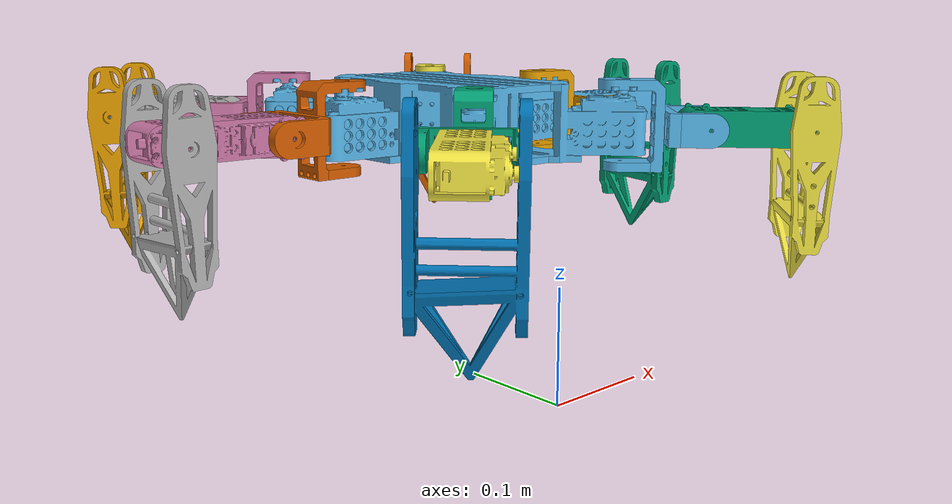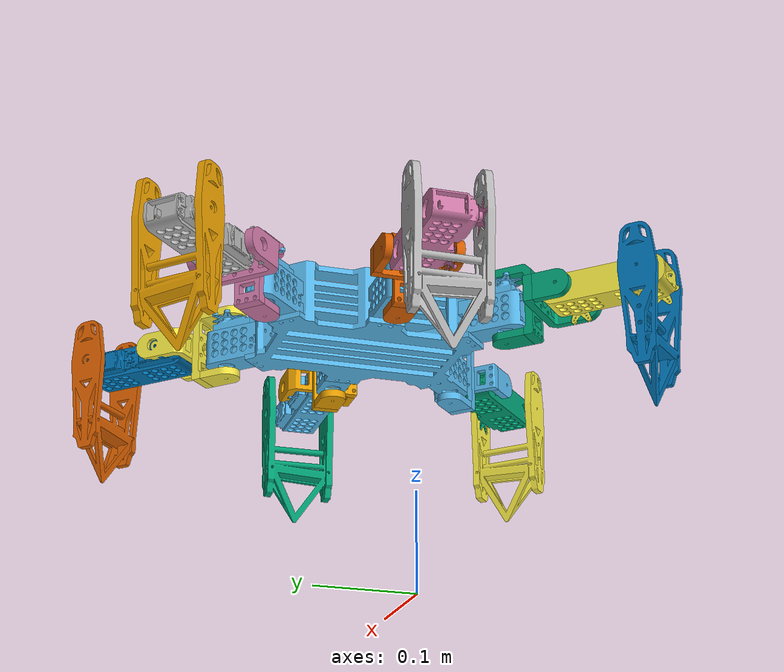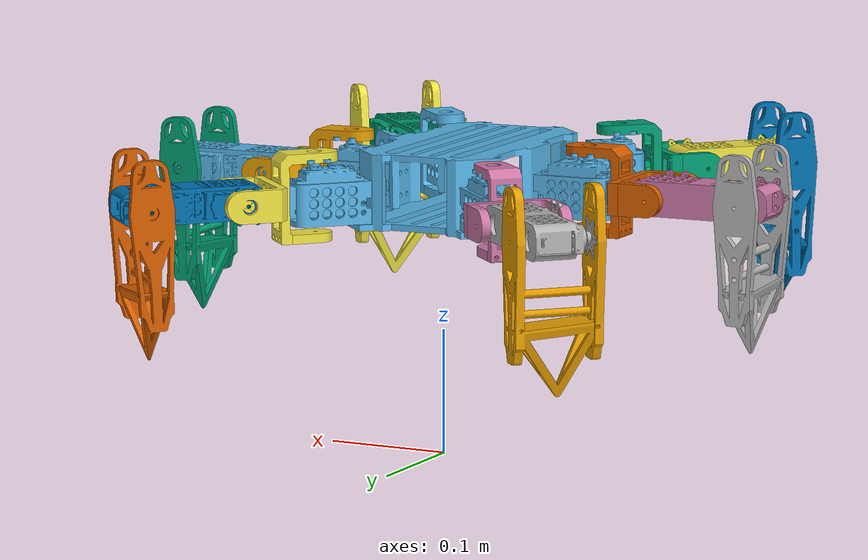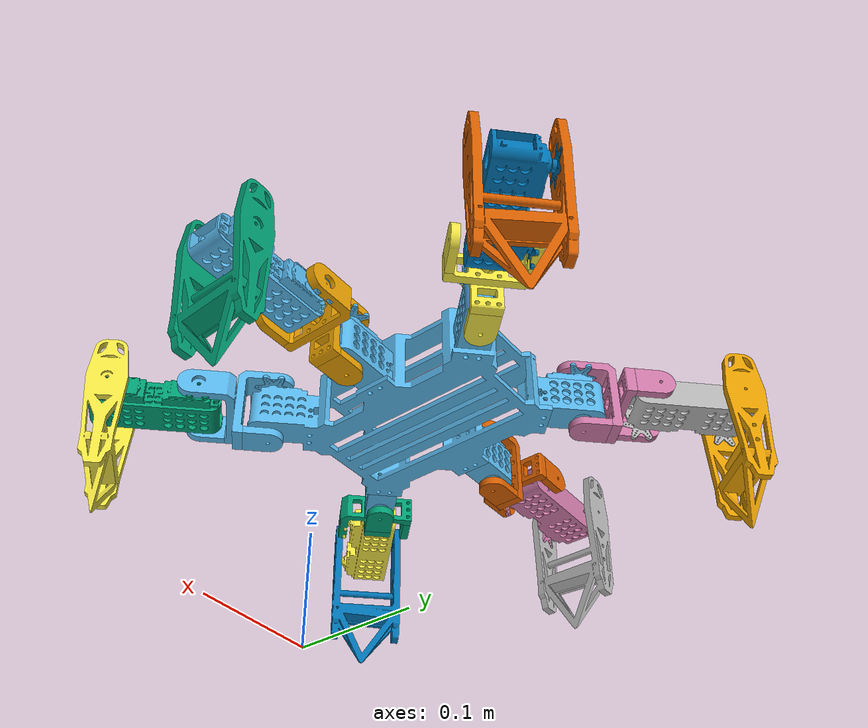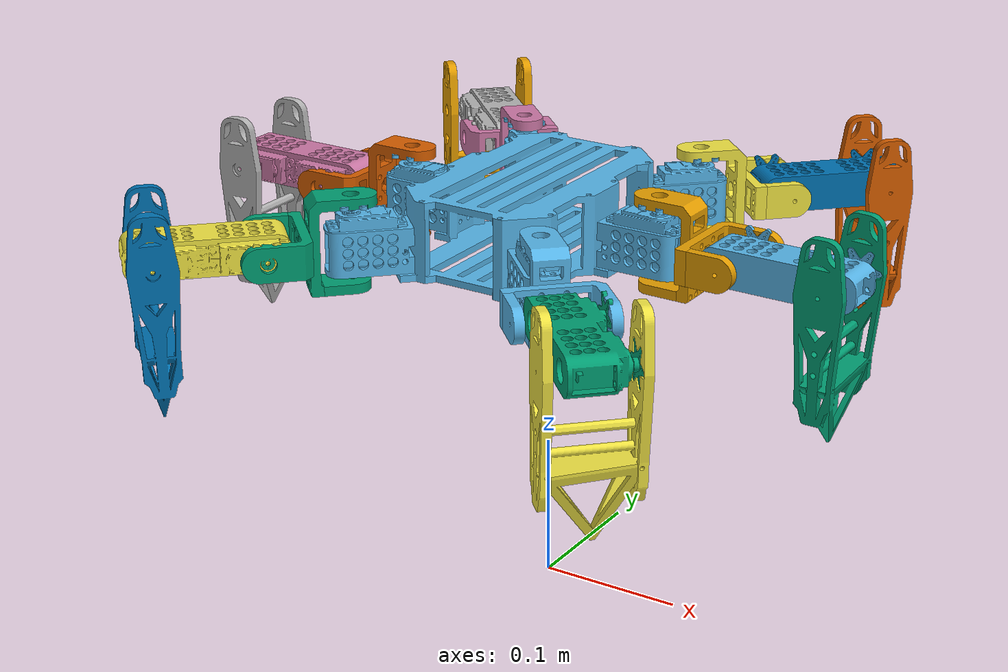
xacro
<?xml version="1.0"?>
<robot name="Hexapod">
  <mujoco>
    <compiler meshdir="C:/Users/ASUS/Desktop/Hexapod/Models/URDF/hexapod_description/meshes" discardvisual="false" fusestatic="false"/>
  </mujoco>
  <link name="world"/>
  <joint name="world_to_base" type="fixed">
    <origin xyz="0 0 0.2" rpy="1.5708 0 0"/>
    <parent link="world"/>
    <child link="base_link"/>
  </joint>
  <link name="base_link">
    <visual>
      <origin xyz="0 0 0" rpy="0 0 0"/>
      <geometry>
        <mesh filename="base_link.stl" scale="0.001 0.001 0.001"/>
      </geometry>
    </visual>
    <visual>
      <origin xyz="0 0 0" rpy="0 0 0"/>
      <geometry>
        <mesh filename="CoxaServo__1__1.stl" scale="0.001 0.001 0.001"/>
      </geometry>
    </visual>
    <visual>
      <origin xyz="0 0 0" rpy="0 0 0"/>
      <geometry>
        <mesh filename="MG996R_Motor__6__1.stl" scale="0.001 0.001 0.001"/>
      </geometry>
    </visual>
    <visual>
      <origin xyz="0 0 0" rpy="0 0 0"/>
      <geometry>
        <mesh filename="CoxaServo__2__1.stl" scale="0.001 0.001 0.001"/>
      </geometry>
    </visual>
    <visual>
      <origin xyz="0 0 0" rpy="0 0 0"/>
      <geometry>
        <mesh filename="MG996R_Motor__7__1.stl" scale="0.001 0.001 0.001"/>
      </geometry>
    </visual>
    <visual>
      <origin xyz="0 0 0" rpy="0 0 0"/>
      <geometry>
        <mesh filename="CoxaServo__3__1.stl" scale="0.001 0.001 0.001"/>
      </geometry>
    </visual>
    <visual>
      <origin xyz="0 0 0" rpy="0 0 0"/>
      <geometry>
        <mesh filename="MG996R_Motor__8__1.stl" scale="0.001 0.001 0.001"/>
      </geometry>
    </visual>
    <visual>
      <origin xyz="0 0 0" rpy="0 0 0"/>
      <geometry>
        <mesh filename="CoxaServo__4__1.stl" scale="0.001 0.001 0.001"/>
      </geometry>
    </visual>
    <visual>
      <origin xyz="0 0 0" rpy="0 0 0"/>
      <geometry>
        <mesh filename="MG996R_Motor__10__1.stl" scale="0.001 0.001 0.001"/>
      </geometry>
    </visual>
    <visual>
      <origin xyz="0 0 0" rpy="0 0 0"/>
      <geometry>
        <mesh filename="CoxaServo__5__1.stl" scale="0.001 0.001 0.001"/>
      </geometry>
    </visual>
    <visual>
      <origin xyz="0 0 0" rpy="0 0 0"/>
      <geometry>
        <mesh filename="MG996R_Motor__9__1.stl" scale="0.001 0.001 0.001"/>
      </geometry>
    </visual>
  </link>
  <link name="Holder__1__1">
    <inertial>
      <origin xyz="-0.0255568 -0.0538439 0.0245731" rpy="-0.594942437 0.200975604 2.17696386"/>
      <mass value="0.309336"/>
      <inertia ixx="0.000259617" iyy="0.000257994" izz="0.000239666" ixy="0" ixz="0" iyz="0"/>
    </inertial>
    <visual>
      <origin xyz="0.129816 -0.088859 -0.039381" rpy="0 0 0"/>
      <geometry>
        <mesh filename="Holder__1__1.stl" scale="0.001 0.001 0.001"/>
      </geometry>
    </visual>
    <visual>
      <origin xyz="0.129816 -0.088859 -0.039381" rpy="0 0 0"/>
      <geometry>
        <mesh filename="Bearing_Holder__6__1.stl" scale="0.001 0.001 0.001"/>
      </geometry>
    </visual>
    <visual>
      <origin xyz="0.129816 -0.088859 -0.039381" rpy="0 0 0"/>
      <geometry>
        <mesh filename="Holder__22__1.stl" scale="0.001 0.001 0.001"/>
      </geometry>
    </visual>
    <visual>
      <origin xyz="0.129816 -0.088859 -0.039381" rpy="0 0 0"/>
      <geometry>
        <mesh filename="Bearing_Holder__23__1.stl" scale="0.001 0.001 0.001"/>
      </geometry>
    </visual>
  </link>
  <joint name="Revolute_20" type="revolute">
    <origin xyz="-0.129816 0.088859 0.039381" rpy="0 0 0"/>
    <parent link="base_link"/>
    <child link="Holder__1__1"/>
    <axis xyz="-0.008081 -0.999967 0"/>
    <limit lower="-1.57" upper="1.57" effort="1" velocity="5"/>
    <dynamics damping="0.05" friction="0.01"/>
  </joint>
  <link name="femur_joint__3__1">
    <inertial>
      <origin xyz="-0.0471071 0.000278413 0.00716005" rpy="-0.777201564 -0.005739382 1.5633659"/>
      <mass value="0.690314"/>
      <inertia ixx="0.000774007" iyy="0.00069753" izz="0.000147462" ixy="0" ixz="0" iyz="0"/>
    </inertial>
    <visual>
      <origin xyz="0.155836 -0.035016 -0.106717" rpy="0 0 0"/>
      <geometry>
        <mesh filename="femur_joint__3__1.stl" scale="0.001 0.001 0.001"/>
      </geometry>
    </visual>
  </link>
  <joint name="Revolute_61" type="revolute">
    <origin xyz="-0.02602 -0.053843 0.067336" rpy="0 0 0"/>
    <parent link="Holder__1__1"/>
    <child link="femur_joint__3__1"/>
    <axis xyz="-0.712775 0.00576 -0.701369"/>
    <limit lower="-1.57" upper="1.57" effort="1" velocity="5"/>
    <dynamics damping="0.05" friction="0.01"/>
  </joint>
  <link name="Leg__5__1">
    <inertial>
      <origin xyz="-0.021054 -0.0347628 -0.0223136" rpy="1.54013017 0.782995094 0.017343772"/>
      <mass value="0.422492"/>
      <inertia ixx="0.000917588" iyy="0.000636045" izz="0.000339367" ixy="0" ixz="0" iyz="0"/>
    </inertial>
    <visual>
      <origin xyz="0.209341 -0.035244 -0.161094" rpy="0 0 0"/>
      <geometry>
        <mesh filename="Leg__5__1.stl" scale="0.001 0.001 0.001"/>
      </geometry>
    </visual>
  </link>
  <joint name="Revolute_67" type="revolute">
    <origin xyz="-0.053505 0.000228 0.054377" rpy="0 0 0"/>
    <parent link="femur_joint__3__1"/>
    <child link="Leg__5__1"/>
    <axis xyz="-0.712775 0.00576 -0.701369"/>
    <limit lower="-1.57" upper="1.57" effort="1" velocity="5"/>
    <dynamics damping="0.05" friction="0.01"/>
  </joint>
  <link name="Holder__4__1">
    <inertial>
      <origin xyz="-0.031416 -0.0547386 -0.0002971" rpy="1.79295798 0.723701275 1.93562552"/>
      <mass value="0.309336"/>
      <inertia ixx="0.000259626" iyy="0.00025868" izz="0.000240989" ixy="0" ixz="0" iyz="0"/>
    </inertial>
    <visual>
      <origin xyz="0.159698 -0.090042 0.069458" rpy="0 0 0"/>
      <geometry>
        <mesh filename="Holder__4__1.stl" scale="0.001 0.001 0.001"/>
      </geometry>
    </visual>
    <visual>
      <origin xyz="0.159698 -0.090042 0.069458" rpy="0 0 0"/>
      <geometry>
        <mesh filename="Bearing_Holder__7__1.stl" scale="0.001 0.001 0.001"/>
      </geometry>
    </visual>
    <visual>
      <origin xyz="0.159698 -0.090042 0.069458" rpy="0 0 0"/>
      <geometry>
        <mesh filename="Holder__20__1.stl" scale="0.001 0.001 0.001"/>
      </geometry>
    </visual>
    <visual>
      <origin xyz="0.159698 -0.090042 0.069458" rpy="0 0 0"/>
      <geometry>
        <mesh filename="Bearing_Holder__21__1.stl" scale="0.001 0.001 0.001"/>
      </geometry>
    </visual>
  </link>
  <joint name="Revolute_23" type="revolute">
    <origin xyz="-0.159698 0.090042 -0.069458" rpy="0 0 0"/>
    <parent link="base_link"/>
    <child link="Holder__4__1"/>
    <axis xyz="-0.008081 -0.999967 0"/>
    <limit lower="-1.57" upper="1.57" effort="1" velocity="5"/>
    <dynamics damping="0.05" friction="0.01"/>
  </joint>
  <link name="femur_joint__5__1">
    <inertial>
      <origin xyz="-0.037489 0.001147 0.0100964" rpy="1.57079633 0 1.56601032"/>
      <mass value="0.690314"/>
      <inertia ixx="0.000774014" iyy="0.000697" izz="0.000146986" ixy="0" ixz="0" iyz="0"/>
    </inertial>
    <visual>
      <origin xyz="0.222574 -0.034609 0.079756" rpy="0 0 0"/>
      <geometry>
        <mesh filename="femur_joint__5__1.stl" scale="0.001 0.001 0.001"/>
      </geometry>
    </visual>
  </link>
  <joint name="Revolute_60" type="revolute">
    <origin xyz="-0.062876 -0.055433 -0.010298" rpy="0 0 0"/>
    <parent link="Holder__4__1"/>
    <child link="femur_joint__5__1"/>
    <axis xyz="0 0 -1"/>
    <limit lower="-1.57" upper="1.57" effort="1" velocity="5"/>
    <dynamics damping="0.05" friction="0.01"/>
  </joint>
  <link name="Leg__4__1">
    <inertial>
      <origin xyz="0.00105444 -0.0349413 -0.0304566" rpy="1.52023544 -0.011161199 0.010668766"/>
      <mass value="0.422492"/>
      <inertia ixx="0.000918097" iyy="0.000635722" izz="0.00033918" ixy="0" ixz="0" iyz="0"/>
    </inertial>
    <visual>
      <origin xyz="0.298206 -0.035962 0.041103" rpy="0 0 0"/>
      <geometry>
        <mesh filename="Leg__4__1.stl" scale="0.001 0.001 0.001"/>
      </geometry>
    </visual>
  </link>
  <joint name="Revolute_66" type="revolute">
    <origin xyz="-0.075632 0.001353 0.038653" rpy="0 0 0"/>
    <parent link="femur_joint__5__1"/>
    <child link="Leg__4__1"/>
    <axis xyz="0 0 -1"/>
    <limit lower="-1.57" upper="1.57" effort="1" velocity="5"/>
    <dynamics damping="0.05" friction="0.01"/>
  </joint>
  <link name="Holder__3__1">
    <inertial>
      <origin xyz="0.0293569 -0.0528097 0.0007788" rpy="1.94309342 -0.968836876 1.07173222"/>
      <mass value="0.309336"/>
      <inertia ixx="0.000259565" iyy="0.000258084" izz="0.000240646" ixy="0" ixz="0" iyz="0"/>
    </inertial>
    <visual>
      <origin xyz="-0.046379 -0.085967 0.070527" rpy="0 0 0"/>
      <geometry>
        <mesh filename="Holder__3__1.stl" scale="0.001 0.001 0.001"/>
      </geometry>
    </visual>
    <visual>
      <origin xyz="-0.046379 -0.085967 0.070527" rpy="0 0 0"/>
      <geometry>
        <mesh filename="Bearing_Holder__5__1.stl" scale="0.001 0.001 0.001"/>
      </geometry>
    </visual>
    <visual>
      <origin xyz="-0.046379 -0.085967 0.070527" rpy="0 0 0"/>
      <geometry>
        <mesh filename="Holder__14__1.stl" scale="0.001 0.001 0.001"/>
      </geometry>
    </visual>
    <visual>
      <origin xyz="-0.046379 -0.085967 0.070527" rpy="0 0 0"/>
      <geometry>
        <mesh filename="Bearing_Holder__15__1.stl" scale="0.001 0.001 0.001"/>
      </geometry>
    </visual>
  </link>
  <joint name="Revolute_22" type="revolute">
    <origin xyz="0.046379 0.085967 -0.070527" rpy="0 0 0"/>
    <parent link="base_link"/>
    <child link="Holder__3__1"/>
    <axis xyz="-0.008081 -0.999967 0"/>
    <limit lower="-1.57" upper="1.57" effort="1" velocity="5"/>
    <dynamics damping="0.05" friction="0.01"/>
  </joint>
  <link name="femur_joint__2__1">
    <inertial>
      <origin xyz="0.0379102 -0.000408925 0.028864" rpy="1.56351292 0.000662472 1.55801474"/>
      <mass value="0.690314"/>
      <inertia ixx="0.000774102" iyy="0.000697029" izz="0.000147869" ixy="0" ixz="0" iyz="0"/>
    </inertial>
    <visual>
      <origin xyz="-0.106779 -0.032894 0.099161" rpy="0 0 0"/>
      <geometry>
        <mesh filename="femur_joint__2__1.stl" scale="0.001 0.001 0.001"/>
      </geometry>
    </visual>
  </link>
  <joint name="Revolute_57" type="revolute">
    <origin xyz="0.0604 -0.053073 -0.028634" rpy="0 0 0"/>
    <parent link="Holder__3__1"/>
    <child link="femur_joint__2__1"/>
    <axis xyz="-0.008081 6.5e-05 0.999967"/>
    <limit lower="-1.57" upper="1.57" effort="1" velocity="5"/>
    <dynamics damping="0.05" friction="0.01"/>
  </joint>
  <link name="Leg__1__1">
    <inertial>
      <origin xyz="-0.00186468 -0.034918 0.0304454" rpy="1.62096987 -0.019096146 -0.026464478"/>
      <mass value="0.422492"/>
      <inertia ixx="0.000917493" iyy="0.000635643" izz="0.000338864" ixy="0" ixz="0" iyz="0"/>
    </inertial>
    <visual>
      <origin xyz="-0.18306 -0.032073 0.098545" rpy="0 0 0"/>
      <geometry>
        <mesh filename="Leg__1__1.stl" scale="0.001 0.001 0.001"/>
      </geometry>
    </visual>
  </link>
  <joint name="Revolute_63" type="revolute">
    <origin xyz="0.076281 -0.000821 0.000616" rpy="0 0 0"/>
    <parent link="femur_joint__2__1"/>
    <child link="Leg__1__1"/>
    <axis xyz="-0.008081 6.5e-05 0.999967"/>
    <limit lower="-1.57" upper="1.57" effort="1" velocity="5"/>
    <dynamics damping="0.05" friction="0.01"/>
  </joint>
  <link name="Holder__9__1">
    <inertial>
      <origin xyz="0.0220447 -0.0516251 -0.023912" rpy="-0.379297663 -0.488814098 0.36895167"/>
      <mass value="0.309336"/>
      <inertia ixx="0.000259234" iyy="0.000258362" izz="0.000239681" ixy="0" ixz="0" iyz="0"/>
    </inertial>
    <visual>
      <origin xyz="-0.01799 -0.085061 0.179689" rpy="0 0 0"/>
      <geometry>
        <mesh filename="Holder__9__1.stl" scale="0.001 0.001 0.001"/>
      </geometry>
    </visual>
    <visual>
      <origin xyz="-0.01799 -0.085061 0.179689" rpy="0 0 0"/>
      <geometry>
        <mesh filename="Bearing_Holder__10__1.stl" scale="0.001 0.001 0.001"/>
      </geometry>
    </visual>
    <visual>
      <origin xyz="-0.01799 -0.085061 0.179689" rpy="0 0 0"/>
      <geometry>
        <mesh filename="Holder__16__1.stl" scale="0.001 0.001 0.001"/>
      </geometry>
    </visual>
    <visual>
      <origin xyz="-0.01799 -0.085061 0.179689" rpy="0 0 0"/>
      <geometry>
        <mesh filename="Bearing_Holder__17__1.stl" scale="0.001 0.001 0.001"/>
      </geometry>
    </visual>
  </link>
  <joint name="Revolute_27" type="revolute">
    <origin xyz="0.01799 0.085061 -0.179689" rpy="0 0 0"/>
    <parent link="base_link"/>
    <child link="Holder__9__1"/>
    <axis xyz="-0.008081 -0.999967 0"/>
    <limit lower="-1.57" upper="1.57" effort="1" velocity="5"/>
    <dynamics damping="0.05" friction="0.01"/>
  </joint>
  <link name="femur_joint__1__1">
    <inertial>
      <origin xyz="0.0471063 -0.000482594 -0.00716008" rpy="-0.777283644 0.000276961 1.55661135"/>
      <mass value="0.690314"/>
      <inertia ixx="0.000774072" iyy="0.000697529" izz="0.000147399" ixy="0" ixz="0" iyz="0"/>
    </inertial>
    <visual>
      <origin xyz="-0.040497 -0.033429 0.246364" rpy="0 0 0"/>
      <geometry>
        <mesh filename="femur_joint__1__1.stl" scale="0.001 0.001 0.001"/>
      </geometry>
    </visual>
  </link>
  <joint name="Revolute_58" type="revolute">
    <origin xyz="0.022507 -0.051632 -0.066675" rpy="0 0 0"/>
    <parent link="Holder__9__1"/>
    <child link="femur_joint__1__1"/>
    <axis xyz="0.712775 -0.00576 0.701369"/>
    <limit lower="-1.57" upper="1.57" effort="1" velocity="5"/>
    <dynamics damping="0.05" friction="0.01"/>
  </joint>
  <link name="Leg__2__1">
    <inertial>
      <origin xyz="-0.104184 -0.0353981 -0.104912" rpy="1.60349926 0.783623184 -0.034637724"/>
      <mass value="0.422492"/>
      <inertia ixx="0.000917347" iyy="0.000635971" izz="0.000338682" ixy="0" ixz="0" iyz="0"/>
    </inertial>
    <visual>
      <origin xyz="-0.21796 -0.033098 0.174217" rpy="0 0 0"/>
      <geometry>
        <mesh filename="Leg__2__1.stl" scale="0.001 0.001 0.001"/>
      </geometry>
    </visual>
  </link>
  <joint name="Revolute_64" type="revolute">
    <origin xyz="0.177463 -0.000331 0.072147" rpy="0 0 0"/>
    <parent link="femur_joint__1__1"/>
    <child link="Leg__2__1"/>
    <axis xyz="0.712775 -0.00576 0.701369"/>
    <limit lower="-1.57" upper="1.57" effort="1" velocity="5"/>
    <dynamics damping="0.05" friction="0.01"/>
  </joint>
  <link name="Holder__8__1">
    <inertial>
      <origin xyz="-0.0220233 -0.0294857 -0.0217811" rpy="0.822308226 0.636735473 1.30713851"/>
      <mass value="0.309336"/>
      <inertia ixx="0.000259715" iyy="0.000258284" izz="0.000240297" ixy="0" ixz="0" iyz="0"/>
    </inertial>
    <visual>
      <origin xyz="0.133563 -0.063502 0.181673" rpy="0 0 0"/>
      <geometry>
        <mesh filename="Holder__8__1.stl" scale="0.001 0.001 0.001"/>
      </geometry>
    </visual>
    <visual>
      <origin xyz="0.133563 -0.063502 0.181673" rpy="0 0 0"/>
      <geometry>
        <mesh filename="Bearing_Holder__11__1.stl" scale="0.001 0.001 0.001"/>
      </geometry>
    </visual>
    <visual>
      <origin xyz="0.133563 -0.063502 0.181673" rpy="0 0 0"/>
      <geometry>
        <mesh filename="Holder__18__1.stl" scale="0.001 0.001 0.001"/>
      </geometry>
    </visual>
    <visual>
      <origin xyz="0.133563 -0.063502 0.181673" rpy="0 0 0"/>
      <geometry>
        <mesh filename="Bearing_Holder__19__1.stl" scale="0.001 0.001 0.001"/>
      </geometry>
    </visual>
  </link>
  <joint name="Revolute_28" type="revolute">
    <origin xyz="-0.133563 0.063502 -0.181673" rpy="0 0 0"/>
    <parent link="base_link"/>
    <child link="Holder__8__1"/>
    <axis xyz="-0.008081 -0.999967 0"/>
    <limit lower="-1.57" upper="1.57" effort="1" velocity="5"/>
    <dynamics damping="0.05" friction="0.01"/>
  </joint>
  <link name="femur_joint__4__1">
    <inertial>
      <origin xyz="-0.0101953 0.0019033 -0.043485" rpy="0.785383303 0.005695024 1.56350698"/>
      <mass value="0.690314"/>
      <inertia ixx="0.000774007" iyy="0.000696994" izz="0.000146999" ixy="0" ixz="0" iyz="0"/>
    </inertial>
    <visual>
      <origin xyz="0.19422 -0.032403 0.208649" rpy="0 0 0"/>
      <geometry>
        <mesh filename="femur_joint__4__1.stl" scale="0.001 0.001 0.001"/>
      </geometry>
    </visual>
  </link>
  <joint name="Revolute_59" type="revolute">
    <origin xyz="-0.060657 -0.031099 -0.026976" rpy="0 0 0"/>
    <parent link="Holder__8__1"/>
    <child link="femur_joint__4__1"/>
    <axis xyz="0.707084 -0.005714 -0.707107"/>
    <limit lower="-1.57" upper="1.57" effort="1" velocity="5"/>
    <dynamics damping="0.05" friction="0.01"/>
  </joint>
  <link name="Leg__3__1">
    <inertial>
      <origin xyz="-0.0521077 -0.0376113 0.048549" rpy="1.50092391 -0.794863302 0.017846428"/>
      <mass value="0.422492"/>
      <inertia ixx="0.000918612" iyy="0.000635445" izz="0.000338943" ixy="0" ixz="0" iyz="0"/>
    </inertial>
    <visual>
      <origin xyz="0.17798 -0.03709 0.327346" rpy="0 0 0"/>
      <geometry>
        <mesh filename="Leg__3__1.stl" scale="0.001 0.001 0.001"/>
      </geometry>
    </visual>
  </link>
  <joint name="Revolute_65" type="revolute">
    <origin xyz="0.01624 0.004687 -0.118697" rpy="0 0 0"/>
    <parent link="femur_joint__4__1"/>
    <child link="Leg__3__1"/>
    <axis xyz="0.707084 -0.005714 -0.707107"/>
    <limit lower="-1.57" upper="1.57" effort="1" velocity="5"/>
    <dynamics damping="0.05" friction="0.01"/>
  </joint>
  <link name="Holder_1">
    <inertial>
      <origin xyz="0.0238172 -0.0506503 0.021422" rpy="0.60608699 -0.80402395 2.1615641"/>
      <mass value="0.309336"/>
      <inertia ixx="0.000260111" iyy="0.000257399" izz="0.000240785" ixy="0" ixz="0" iyz="0"/>
    </inertial>
    <visual>
      <origin xyz="-0.016477 -0.084094 -0.042275" rpy="0 0 0"/>
      <geometry>
        <mesh filename="Holder_1.stl" scale="0.001 0.001 0.001"/>
      </geometry>
    </visual>
    <visual>
      <origin xyz="-0.016477 -0.084094 -0.042275" rpy="0 0 0"/>
      <geometry>
        <mesh filename="Bearing_Holder__2__1.stl" scale="0.001 0.001 0.001"/>
      </geometry>
    </visual>
    <visual>
      <origin xyz="-0.016477 -0.084094 -0.042275" rpy="0 0 0"/>
      <geometry>
        <mesh filename="Holder__12__1.stl" scale="0.001 0.001 0.001"/>
      </geometry>
    </visual>
    <visual>
      <origin xyz="-0.016477 -0.084094 -0.042275" rpy="0 0 0"/>
      <geometry>
        <mesh filename="Bearing_Holder__13__1.stl" scale="0.001 0.001 0.001"/>
      </geometry>
    </visual>
  </link>
  <joint name="Revolute_14" type="revolute">
    <origin xyz="0.016477 0.084094 0.042275" rpy="0 0 0"/>
    <parent link="base_link"/>
    <child link="Holder_1"/>
    <axis xyz="0 -1 0"/>
    <limit lower="-1.57" upper="1.57" effort="1" velocity="5"/>
    <dynamics damping="0.05" friction="0.01"/>
  </joint>
  <link name="femur_joint_1">
    <inertial>
      <origin xyz="0.0185801 -0.0050549 0.034508" rpy="0.78546289 -0.000688377 1.55713381"/>
      <mass value="0.690314"/>
      <inertia ixx="0.000774071" iyy="0.000696994" izz="0.000146935" ixy="0" ixz="0" iyz="0"/>
    </inertial>
    <visual>
      <origin xyz="-0.070541 -0.037989 -0.077869" rpy="0 0 0"/>
      <geometry>
        <mesh filename="femur_joint_1.stl" scale="0.001 0.001 0.001"/>
      </geometry>
    </visual>
  </link>
  <joint name="Revolute_56" type="revolute">
    <origin xyz="0.054064 -0.046105 0.035594" rpy="0 0 0"/>
    <parent link="Holder_1"/>
    <child link="femur_joint_1"/>
    <axis xyz="-0.707084 0.005714 0.707107"/>
    <limit lower="-1.57" upper="1.57" effort="1" velocity="5"/>
    <dynamics damping="0.05" friction="0.01"/>
  </joint>
  <link name="Leg_1">
    <inertial>
      <origin xyz="-0.0227625 -0.0347491 0.0205914" rpy="1.63959606 -0.795088487 -0.033531397"/>
      <mass value="0.422492"/>
      <inertia ixx="0.00091784" iyy="0.000636075" izz="0.000339084" ixy="0" ixz="0" iyz="0"/>
    </inertial>
    <visual>
      <origin xyz="-0.136283 -0.032451 -0.119156" rpy="0 0 0"/>
      <geometry>
        <mesh filename="Leg_1.stl" scale="0.001 0.001 0.001"/>
      </geometry>
    </visual>
  </link>
  <joint name="Revolute_62" type="revolute">
    <origin xyz="0.065742 -0.005538 0.041287" rpy="0 0 0"/>
    <parent link="femur_joint_1"/>
    <child link="Leg_1"/>
    <axis xyz="-0.707084 0.005714 0.707107"/>
    <limit lower="-1.57" upper="1.57" effort="1" velocity="5"/>
    <dynamics damping="0.05" friction="0.01"/>
  </joint>
</robot>
